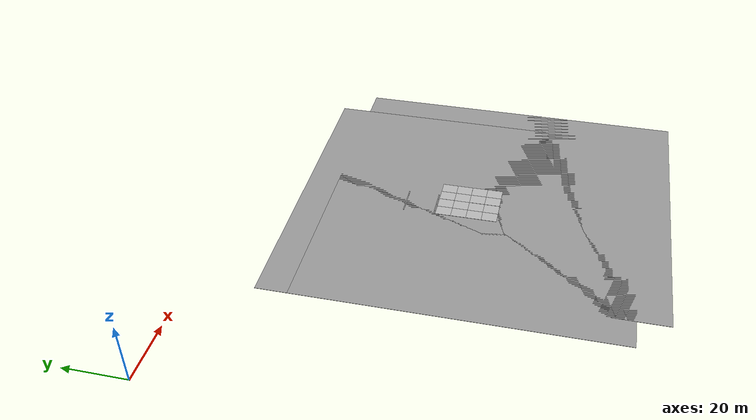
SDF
<sdf version="1.6">
 <world name="road_test">
  <model name="road_intersection_6_8">
   <static>1</static>
   <link name="road_intersection::link">
    <collision name="collision">
     <geometry><plane><normal>0 0 1</normal><size>10 10</size></plane></geometry>
     <surface><friction><ode><mu>75</mu><mu2>75</mu2></ode></friction></surface>
    </collision>
    <visual name="visual">
     <cast_shadows>0</cast_shadows>
     <geometry><plane><normal>0 0 1</normal><size>10 10</size></plane></geometry>
     <material>
      <script>
       <uri>model://road_intersection/materials/scripts</uri>
       <uri>model://road_intersection/materials/textures</uri>
       <name>road_intersection/Image</name>
      </script>
     </material>
    </visual>
   </link>
   <pose>80 -60 0.02 0 -0 0</pose>
  </model>
  <model name="road_straight_6_9">
   <static>1</static>
   <link name="road_straight::link">
    <collision name="collision">
     <geometry><plane><normal>0 0 1</normal><size>10 10</size></plane></geometry>
     <surface><friction><ode><mu>75</mu><mu2>75</mu2></ode></friction></surface>
    </collision>
    <visual name="visual">
     <cast_shadows>0</cast_shadows>
     <geometry><plane><normal>0 0 1</normal><size>10 10</size></plane></geometry>
     <material>
      <script>
       <uri>model://road_straight/materials/scripts</uri>
       <uri>model://road_straight/materials/textures</uri>
       <name>road_straight/Image</name>
      </script>
     </material>
    </visual>
   </link>
   <pose>90 -60 0.02 0 -0 0</pose>
  </model>
  <model name="curb_straight_6_9">
   <link name="curb_staight::Wall_5">
    <collision name="Wall_5_Collision">
     <geometry><box><size>10 0.3 0.22</size></box></geometry>
     <pose>0 -5 0 0 -0 0</pose>
    </collision>
    <visual name="Wall_5_Visual">
     <pose>0 -5 0 0 -0 0</pose>
     <geometry><box><size>10 0.3 0.22</size></box></geometry>
     <material>
      <script><uri>file://media/materials/scripts/gazebo.material</uri><name>Gazebo/Grey</name></script>
      <ambient>1 1 1 1</ambient>
     </material>
     <meta><layer>0</layer></meta>
    </visual>
   </link>
   <link name="curb_staight::Wall_7">
    <collision name="Wall_7_Collision">
     <geometry><box><size>10 0.3 0.22</size></box></geometry>
     <pose>0 5 0 0 -0 0</pose>
    </collision>
    <visual name="Wall_7_Visual">
     <pose>0 5 0 0 -0 0</pose>
     <geometry><box><size>10 0.3 0.22</size></box></geometry>
     <material>
      <script><uri>file://media/materials/scripts/gazebo.material</uri><name>Gazebo/Grey</name></script>
      <ambient>1 1 1 1</ambient>
     </material>
     <meta><layer>0</layer></meta>
    </visual>
   </link>
   <static>1</static>
   <pose>90 -60 0.02 0 -0 0</pose>
  </model>
  <model name="ground_plane_7_9">
   <static>1</static>
   <link name="ground_plane::link">
    <collision name="collision">
     <geometry><plane><normal>0 0 1</normal><size>100 100</size></plane></geometry>
     <surface><friction><ode><mu>100</mu><mu2>50</mu2></ode></friction></surface>
    </collision>
    <visual name="visual">
     <cast_shadows>0</cast_shadows>
     <geometry><plane><normal>0 0 1</normal><size>100 100</size></plane></geometry>
     <material>
      <script><uri>file://media/materials/scripts/gazebo.material</uri><name>Gazebo/Grey</name></script>
     </material>
    </visual>
   </link>
   <pose>90 -70 0 0 -0 0</pose>
  </model>
  <model name="ground_plane_8_9">
   <static>1</static>
   <link name="ground_plane::link">
    <collision name="collision">
     <geometry><plane><normal>0 0 1</normal><size>100 100</size></plane></geometry>
     <surface><friction><ode><mu>100</mu><mu2>50</mu2></ode></friction></surface>
    </collision>
    <visual name="visual">
     <cast_shadows>0</cast_shadows>
     <geometry><plane><normal>0 0 1</normal><size>100 100</size></plane></geometry>
     <material>
      <script><uri>file://media/materials/scripts/gazebo.material</uri><name>Gazebo/Grey</name></script>
     </material>
    </visual>
   </link>
   <pose>90 -80 0 0 -0 0</pose>
  </model>
  <model name="ground_plane_8_10">
   <static>1</static>
   <link name="ground_plane::link">
    <collision name="collision">
     <geometry><plane><normal>0 0 1</normal><size>100 100</size></plane></geometry>
     <surface><friction><ode><mu>100</mu><mu2>50</mu2></ode></friction></surface>
    </collision>
    <visual name="visual">
     <cast_shadows>0</cast_shadows>
     <geometry><plane><normal>0 0 1</normal><size>100 100</size></plane></geometry>
     <material>
      <script><uri>file://media/materials/scripts/gazebo.material</uri><name>Gazebo/Grey</name></script>
     </material>
    </visual>
   </link>
   <pose>100 -80 0 0 -0 0</pose>
  </model>
  <model name="ground_plane_9_10">
   <static>1</static>
   <link name="ground_plane::link">
    <collision name="collision">
     <geometry><plane><normal>0 0 1</normal><size>100 100</size></plane></geometry>
     <surface><friction><ode><mu>100</mu><mu2>50</mu2></ode></friction></surface>
    </collision>
    <visual name="visual">
     <cast_shadows>0</cast_shadows>
     <geometry><plane><normal>0 0 1</normal><size>100 100</size></plane></geometry>
     <material>
      <script><uri>file://media/materials/scripts/gazebo.material</uri><name>Gazebo/Grey</name></script>
     </material>
    </visual>
   </link>
   <pose>100 -90 0 0 -0 0</pose>
  </model>
  <model name="mud_box">
   <static>1</static>
   <link name="link">
    <collision name="collision"><geometry><box><size>8 10 0.2</size></box></geometry></collision>
    <visual name="visual_1">
     <pose>-2 2.5 0 0 -0 0</pose>
     <cast_shadows>0</cast_shadows>
     <geometry><box><size>4 5 0.2</size></box></geometry>
     <material>
      <script>
       <uri>model://mud_box/materials/scripts</uri>
       <uri>model://mud_box/materials/textures</uri>
       <name>vrc/mud</name>
      </script>
     </material>
    </visual>
    <visual name="visual_2">
     <pose>2 2.5 0 0 -0 0</pose>
     <cast_shadows>0</cast_shadows>
     <geometry><box><size>4 5 0.2</size></box></geometry>
     <material>
      <script>
       <uri>model://mud_box/materials/scripts</uri>
       <uri>model://mud_box/materials/textures</uri>
       <name>vrc/mud</name>
      </script>
     </material>
    </visual>
    <visual name="visual_3">
     <pose>2 -2.5 0 0 -0 0</pose>
     <cast_shadows>0</cast_shadows>
     <geometry><box><size>4 5 0.2</size></box></geometry>
     <material>
      <script>
       <uri>model://mud_box/materials/scripts</uri>
       <uri>model://mud_box/materials/textures</uri>
       <name>vrc/mud</name>
      </script>
     </material>
    </visual>
    <visual name="visual_4">
     <pose>-2 -2.5 0 0 -0 0</pose>
     <cast_shadows>0</cast_shadows>
     <geometry><box><size>4 5 0.2</size></box></geometry>
     <material>
      <script>
       <uri>model://mud_box/materials/scripts</uri>
       <uri>model://mud_box/materials/textures</uri>
       <name>vrc/mud</name>
      </script>
     </material>
    </visual>
   </link>
   <pose>89.1739 -70.4506 0 0 -0 0</pose>
  </model>
  <model name="mud_box_0">
   <static>1</static>
   <link name="link">
    <collision name="collision"><geometry><box><size>8 10 0.2</size></box></geometry></collision>
    <visual name="visual_1">
     <pose>-2 2.5 0 0 -0 0</pose>
     <cast_shadows>0</cast_shadows>
     <geometry><box><size>4 5 0.2</size></box></geometry>
     <material>
      <script>
       <uri>model://mud_box/materials/scripts</uri>
       <uri>model://mud_box/materials/textures</uri>
       <name>vrc/mud</name>
      </script>
     </material>
    </visual>
    <visual name="visual_2">
     <pose>2 2.5 0 0 -0 0</pose>
     <cast_shadows>0</cast_shadows>
     <geometry><box><size>4 5 0.2</size></box></geometry>
     <material>
      <script>
       <uri>model://mud_box/materials/scripts</uri>
       <uri>model://mud_box/materials/textures</uri>
       <name>vrc/mud</name>
      </script>
     </material>
    </visual>
    <visual name="visual_3">
     <pose>2 -2.5 0 0 -0 0</pose>
     <cast_shadows>0</cast_shadows>
     <geometry><box><size>4 5 0.2</size></box></geometry>
     <material>
      <script>
       <uri>model://mud_box/materials/scripts</uri>
       <uri>model://mud_box/materials/textures</uri>
       <name>vrc/mud</name>
      </script>
     </material>
    </visual>
    <visual name="visual_4">
     <pose>-2 -2.5 0 0 -0 0</pose>
     <cast_shadows>0</cast_shadows>
     <geometry><box><size>4 5 0.2</size></box></geometry>
     <material>
      <script>
       <uri>model://mud_box/materials/scripts</uri>
       <uri>model://mud_box/materials/textures</uri>
       <name>vrc/mud</name>
      </script>
     </material>
    </visual>
   </link>
   <pose>89.1698 -80.4458 0 0 -0 0</pose>
  </model>
  <model name="mud_box_1">
   <static>1</static>
   <link name="link">
    <collision name="collision"><geometry><box><size>8 10 0.2</size></box></geometry></collision>
    <visual name="visual_1">
     <pose>-2 2.5 0 0 -0 0</pose>
     <cast_shadows>0</cast_shadows>
     <geometry><box><size>4 5 0.2</size></box></geometry>
     <material>
      <script>
       <uri>model://mud_box/materials/scripts</uri>
       <uri>model://mud_box/materials/textures</uri>
       <name>vrc/mud</name>
      </script>
     </material>
    </visual>
    <visual name="visual_2">
     <pose>2 2.5 0 0 -0 0</pose>
     <cast_shadows>0</cast_shadows>
     <geometry><box><size>4 5 0.2</size></box></geometry>
     <material>
      <script>
       <uri>model://mud_box/materials/scripts</uri>
       <uri>model://mud_box/materials/textures</uri>
       <name>vrc/mud</name>
      </script>
     </material>
    </visual>
    <visual name="visual_3">
     <pose>2 -2.5 0 0 -0 0</pose>
     <cast_shadows>0</cast_shadows>
     <geometry><box><size>4 5 0.2</size></box></geometry>
     <material>
      <script>
       <uri>model://mud_box/materials/scripts</uri>
       <uri>model://mud_box/materials/textures</uri>
       <name>vrc/mud</name>
      </script>
     </material>
    </visual>
    <visual name="visual_4">
     <pose>-2 -2.5 0 0 -0 0</pose>
     <cast_shadows>0</cast_shadows>
     <geometry><box><size>4 5 0.2</size></box></geometry>
     <material>
      <script>
       <uri>model://mud_box/materials/scripts</uri>
       <uri>model://mud_box/materials/textures</uri>
       <name>vrc/mud</name>
      </script>
     </material>
    </visual>
   </link>
   <pose>97.1806 -70.426 0 0 -0 0</pose>
  </model>
  <model name="mud_box_2">
   <static>1</static>
   <link name="link">
    <collision name="collision"><geometry><box><size>8 10 0.2</size></box></geometry></collision>
    <visual name="visual_1">
     <pose>-2 2.5 0 0 -0 0</pose>
     <cast_shadows>0</cast_shadows>
     <geometry><box><size>4 5 0.2</size></box></geometry>
     <material>
      <script>
       <uri>model://mud_box/materials/scripts</uri>
       <uri>model://mud_box/materials/textures</uri>
       <name>vrc/mud</name>
      </script>
     </material>
    </visual>
    <visual name="visual_2">
     <pose>2 2.5 0 0 -0 0</pose>
     <cast_shadows>0</cast_shadows>
     <geometry><box><size>4 5 0.2</size></box></geometry>
     <material>
      <script>
       <uri>model://mud_box/materials/scripts</uri>
       <uri>model://mud_box/materials/textures</uri>
       <name>vrc/mud</name>
      </script>
     </material>
    </visual>
    <visual name="visual_3">
     <pose>2 -2.5 0 0 -0 0</pose>
     <cast_shadows>0</cast_shadows>
     <geometry><box><size>4 5 0.2</size></box></geometry>
     <material>
      <script>
       <uri>model://mud_box/materials/scripts</uri>
       <uri>model://mud_box/materials/textures</uri>
       <name>vrc/mud</name>
      </script>
     </material>
    </visual>
    <visual name="visual_4">
     <pose>-2 -2.5 0 0 -0 0</pose>
     <cast_shadows>0</cast_shadows>
     <geometry><box><size>4 5 0.2</size></box></geometry>
     <material>
      <script>
       <uri>model://mud_box/materials/scripts</uri>
       <uri>model://mud_box/materials/textures</uri>
       <name>vrc/mud</name>
      </script>
     </material>
    </visual>
   </link>
   <pose>97.2235 -80.4355 0 0 -0 0</pose>
  </model>
 </world>
</sdf>
